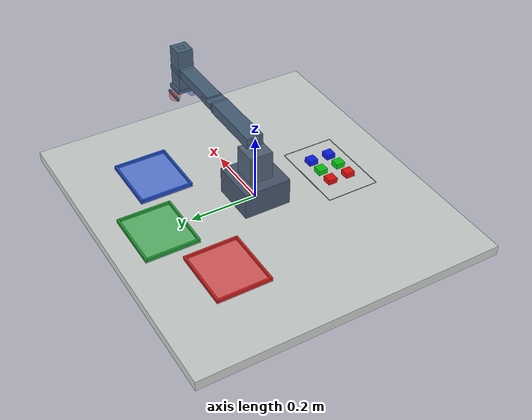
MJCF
<?xml version='1.0' encoding='utf-8'?>
<mujoco model="scara_color_sorter_m2">
  <compiler angle="radian" autolimits="true" fusestatic="false" inertiafromgeom="false" balanceinertia="false" />
  <option timestep="0.002" gravity="0 0 -9.8066499999999994" integrator="implicitfast" solver="Newton" iterations="100" tolerance="1e-08" impratio="1" noslip_iterations="1" cone="elliptic" />
  <size njmax="3000" nconmax="800" />
  <visual>
    <global azimuth="135" elevation="-25" offwidth="1280" offheight="960" />
  </visual>
  <default>
    <joint limited="true" armature="0.001" />
    <geom contype="1" conaffinity="1" condim="6" solref="0.02 1" solimp="0.94999999999999996 0.98999999999999999 0.001" />
  </default>
  <worldbody>
    <light name="key_light" pos="0 0 1.3500000000000001" dir="0 0 -1" directional="true" diffuse="0.81999999999999995 0.81999999999999995 0.81999999999999995" ambient="0.35999999999999999 0.35999999999999999 0.35999999999999999" specular="0.10000000000000001 0.10000000000000001 0.10000000000000001" />
    <camera name="overhead_rgb" pos="0 0 1.05" quat="1 0 0 0" fovy="50" mode="fixed" />
    <body name="table" pos="0 0 0">
      <geom name="table_top_visual" type="box" size="0.5 0.45000000000000001 0.014999999999999999" pos="0 0 -0.014999999999999999" rgba="0.80000000000000004 0.81999999999999995 0.81000000000000005 1" contype="0" conaffinity="0" group="1" mass="0" />
      <geom name="table_top_collision" type="box" size="0.5 0.45000000000000001 0.014999999999999999" pos="0 0 -0.014999999999999999" rgba="0 0 0 0" contype="1" conaffinity="1" group="3" mass="0" friction="0.5 0.0050000000000000001 0.001" condim="6" solref="0.02 1" solimp="0.94999999999999996 0.98999999999999999 0.001" />
    </body>
    <body name="base_static" pos="0 0 0">
      <geom name="base_foot_visual" type="box" size="0.070000000000000007 0.070000000000000007 0.040000000000000001" pos="0 0 0.040000000000000001" rgba="0.28000000000000003 0.34000000000000002 0.41999999999999998 1" contype="0" conaffinity="0" group="1" mass="0" />
      <geom name="base_foot_collision" type="box" size="0.070000000000000007 0.070000000000000007 0.040000000000000001" pos="0 0 0.040000000000000001" rgba="0 0 0 0" contype="1" conaffinity="1" group="3" mass="0" friction="0.5 0.0050000000000000001 0.001" condim="6" solref="0.02 1" solimp="0.94999999999999996 0.98999999999999999 0.001" />
      <geom name="base_column_visual" type="box" size="0.035000000000000003 0.035000000000000003 0.042500000000000003" pos="0 0 0.1225" rgba="0.32000000000000001 0.39000000000000001 0.46999999999999997 1" contype="0" conaffinity="0" group="1" mass="0" />
      <geom name="base_column_collision" type="box" size="0.035000000000000003 0.035000000000000003 0.042500000000000003" pos="0 0 0.1225" rgba="0 0 0 0" contype="1" conaffinity="1" group="3" mass="0" friction="0.5 0.0050000000000000001 0.001" condim="6" solref="0.02 1" solimp="0.94999999999999996 0.98999999999999999 0.001" />
      <geom name="base_axle_visual" type="cylinder" size="0.01 0.02" pos="0 0 0.185" rgba="0.38 0.44 0.52000000000000002 1" contype="0" conaffinity="0" group="1" mass="0" />
      <geom name="base_axle_collision" type="cylinder" size="0.01 0.02" pos="0 0 0.185" rgba="0 0 0 0" contype="1" conaffinity="1" group="3" mass="0" friction="0.5 0.0050000000000000001 0.001" condim="6" solref="0.02 1" solimp="0.94999999999999996 0.98999999999999999 0.001" />
    </body>
    <body name="input_zone_visual" pos="0 0 0">
      <geom name="input_mark_xmin_visual" type="box" size="0.001 0.080000000000000002 0.00050000000000000001" pos="-0.12 -0.25 0.00050000000000000001" rgba="0.45000000000000001 0.47999999999999998 0.52000000000000002 1" contype="0" conaffinity="0" group="1" mass="0" />
      <geom name="input_mark_xmax_visual" type="box" size="0.001 0.080000000000000002 0.00050000000000000001" pos="0.12 -0.25 0.00050000000000000001" rgba="0.45000000000000001 0.47999999999999998 0.52000000000000002 1" contype="0" conaffinity="0" group="1" mass="0" />
      <geom name="input_mark_ymin_visual" type="box" size="0.12 0.001 0.00050000000000000001" pos="0 -0.33000000000000002 0.00050000000000000001" rgba="0.45000000000000001 0.47999999999999998 0.52000000000000002 1" contype="0" conaffinity="0" group="1" mass="0" />
      <geom name="input_mark_ymax_visual" type="box" size="0.12 0.001 0.00050000000000000001" pos="0 -0.16999999999999998 0.00050000000000000001" rgba="0.45000000000000001 0.47999999999999998 0.52000000000000002 1" contype="0" conaffinity="0" group="1" mass="0" />
    </body>
    <body name="tray_red" pos="-0.22 0.20999999999999999 0">
      <geom name="tray_red_floor_visual" type="box" size="0.091999999999999998 0.080000000000000002 0.002" pos="0 0 0.002" rgba="0.87039999999999995 0.3664 0.3664 1" contype="0" conaffinity="0" group="1" mass="0" />
      <geom name="tray_red_floor_collision" type="box" size="0.091999999999999998 0.080000000000000002 0.002" pos="0 0 0.002" rgba="0 0 0 0" contype="1" conaffinity="1" group="3" mass="0" friction="0.5 0.0050000000000000001 0.001" condim="6" solref="0.02 1" solimp="0.94999999999999996 0.98999999999999999 0.001" />
      <geom name="tray_red_left_wall_visual" type="box" size="0.0030000000000000001 0.073999999999999996 0.0040000000000000001" pos="-0.088999999999999996 0 0.0080000000000000002" rgba="0.81999999999999995 0.12 0.12 1" contype="0" conaffinity="0" group="1" mass="0" />
      <geom name="tray_red_left_wall_collision" type="box" size="0.0030000000000000001 0.073999999999999996 0.0040000000000000001" pos="-0.088999999999999996 0 0.0080000000000000002" rgba="0 0 0 0" contype="1" conaffinity="1" group="3" mass="0" friction="0.5 0.0050000000000000001 0.001" condim="6" solref="0.02 1" solimp="0.94999999999999996 0.98999999999999999 0.001" />
      <geom name="tray_red_right_wall_visual" type="box" size="0.0030000000000000001 0.073999999999999996 0.0040000000000000001" pos="0.088999999999999996 0 0.0080000000000000002" rgba="0.81999999999999995 0.12 0.12 1" contype="0" conaffinity="0" group="1" mass="0" />
      <geom name="tray_red_right_wall_collision" type="box" size="0.0030000000000000001 0.073999999999999996 0.0040000000000000001" pos="0.088999999999999996 0 0.0080000000000000002" rgba="0 0 0 0" contype="1" conaffinity="1" group="3" mass="0" friction="0.5 0.0050000000000000001 0.001" condim="6" solref="0.02 1" solimp="0.94999999999999996 0.98999999999999999 0.001" />
      <geom name="tray_red_front_wall_visual" type="box" size="0.091999999999999998 0.0030000000000000001 0.0040000000000000001" pos="0 -0.076999999999999999 0.0080000000000000002" rgba="0.81999999999999995 0.12 0.12 1" contype="0" conaffinity="0" group="1" mass="0" />
      <geom name="tray_red_front_wall_collision" type="box" size="0.091999999999999998 0.0030000000000000001 0.0040000000000000001" pos="0 -0.076999999999999999 0.0080000000000000002" rgba="0 0 0 0" contype="1" conaffinity="1" group="3" mass="0" friction="0.5 0.0050000000000000001 0.001" condim="6" solref="0.02 1" solimp="0.94999999999999996 0.98999999999999999 0.001" />
      <geom name="tray_red_back_wall_visual" type="box" size="0.091999999999999998 0.0030000000000000001 0.0040000000000000001" pos="0 0.076999999999999999 0.0080000000000000002" rgba="0.81999999999999995 0.12 0.12 1" contype="0" conaffinity="0" group="1" mass="0" />
      <geom name="tray_red_back_wall_collision" type="box" size="0.091999999999999998 0.0030000000000000001 0.0040000000000000001" pos="0 0.076999999999999999 0.0080000000000000002" rgba="0 0 0 0" contype="1" conaffinity="1" group="3" mass="0" friction="0.5 0.0050000000000000001 0.001" condim="6" solref="0.02 1" solimp="0.94999999999999996 0.98999999999999999 0.001" />
    </body>
    <body name="tray_green" pos="0 0.29999999999999999 0">
      <geom name="tray_green_floor_visual" type="box" size="0.091999999999999998 0.080000000000000002 0.002" pos="0 0 0.002" rgba="0.3664 0.72639999999999993 0.42400000000000004 1" contype="0" conaffinity="0" group="1" mass="0" />
      <geom name="tray_green_floor_collision" type="box" size="0.091999999999999998 0.080000000000000002 0.002" pos="0 0 0.002" rgba="0 0 0 0" contype="1" conaffinity="1" group="3" mass="0" friction="0.5 0.0050000000000000001 0.001" condim="6" solref="0.02 1" solimp="0.94999999999999996 0.98999999999999999 0.001" />
      <geom name="tray_green_left_wall_visual" type="box" size="0.0030000000000000001 0.073999999999999996 0.0040000000000000001" pos="-0.088999999999999996 0 0.0080000000000000002" rgba="0.12 0.62 0.20000000000000001 1" contype="0" conaffinity="0" group="1" mass="0" />
      <geom name="tray_green_left_wall_collision" type="box" size="0.0030000000000000001 0.073999999999999996 0.0040000000000000001" pos="-0.088999999999999996 0 0.0080000000000000002" rgba="0 0 0 0" contype="1" conaffinity="1" group="3" mass="0" friction="0.5 0.0050000000000000001 0.001" condim="6" solref="0.02 1" solimp="0.94999999999999996 0.98999999999999999 0.001" />
      <geom name="tray_green_right_wall_visual" type="box" size="0.0030000000000000001 0.073999999999999996 0.0040000000000000001" pos="0.088999999999999996 0 0.0080000000000000002" rgba="0.12 0.62 0.20000000000000001 1" contype="0" conaffinity="0" group="1" mass="0" />
      <geom name="tray_green_right_wall_collision" type="box" size="0.0030000000000000001 0.073999999999999996 0.0040000000000000001" pos="0.088999999999999996 0 0.0080000000000000002" rgba="0 0 0 0" contype="1" conaffinity="1" group="3" mass="0" friction="0.5 0.0050000000000000001 0.001" condim="6" solref="0.02 1" solimp="0.94999999999999996 0.98999999999999999 0.001" />
      <geom name="tray_green_front_wall_visual" type="box" size="0.091999999999999998 0.0030000000000000001 0.0040000000000000001" pos="0 -0.076999999999999999 0.0080000000000000002" rgba="0.12 0.62 0.20000000000000001 1" contype="0" conaffinity="0" group="1" mass="0" />
      <geom name="tray_green_front_wall_collision" type="box" size="0.091999999999999998 0.0030000000000000001 0.0040000000000000001" pos="0 -0.076999999999999999 0.0080000000000000002" rgba="0 0 0 0" contype="1" conaffinity="1" group="3" mass="0" friction="0.5 0.0050000000000000001 0.001" condim="6" solref="0.02 1" solimp="0.94999999999999996 0.98999999999999999 0.001" />
      <geom name="tray_green_back_wall_visual" type="box" size="0.091999999999999998 0.0030000000000000001 0.0040000000000000001" pos="0 0.076999999999999999 0.0080000000000000002" rgba="0.12 0.62 0.20000000000000001 1" contype="0" conaffinity="0" group="1" mass="0" />
      <geom name="tray_green_back_wall_collision" type="box" size="0.091999999999999998 0.0030000000000000001 0.0040000000000000001" pos="0 0.076999999999999999 0.0080000000000000002" rgba="0 0 0 0" contype="1" conaffinity="1" group="3" mass="0" friction="0.5 0.0050000000000000001 0.001" condim="6" solref="0.02 1" solimp="0.94999999999999996 0.98999999999999999 0.001" />
    </body>
    <body name="tray_blue" pos="0.22 0.20999999999999999 0">
      <geom name="tray_blue_floor_visual" type="box" size="0.091999999999999998 0.080000000000000002 0.002" pos="0 0 0.002" rgba="0.3664 0.496 0.85599999999999998 1" contype="0" conaffinity="0" group="1" mass="0" />
      <geom name="tray_blue_floor_collision" type="box" size="0.091999999999999998 0.080000000000000002 0.002" pos="0 0 0.002" rgba="0 0 0 0" contype="1" conaffinity="1" group="3" mass="0" friction="0.5 0.0050000000000000001 0.001" condim="6" solref="0.02 1" solimp="0.94999999999999996 0.98999999999999999 0.001" />
      <geom name="tray_blue_left_wall_visual" type="box" size="0.0030000000000000001 0.073999999999999996 0.0040000000000000001" pos="-0.088999999999999996 0 0.0080000000000000002" rgba="0.12 0.29999999999999999 0.80000000000000004 1" contype="0" conaffinity="0" group="1" mass="0" />
      <geom name="tray_blue_left_wall_collision" type="box" size="0.0030000000000000001 0.073999999999999996 0.0040000000000000001" pos="-0.088999999999999996 0 0.0080000000000000002" rgba="0 0 0 0" contype="1" conaffinity="1" group="3" mass="0" friction="0.5 0.0050000000000000001 0.001" condim="6" solref="0.02 1" solimp="0.94999999999999996 0.98999999999999999 0.001" />
      <geom name="tray_blue_right_wall_visual" type="box" size="0.0030000000000000001 0.073999999999999996 0.0040000000000000001" pos="0.088999999999999996 0 0.0080000000000000002" rgba="0.12 0.29999999999999999 0.80000000000000004 1" contype="0" conaffinity="0" group="1" mass="0" />
      <geom name="tray_blue_right_wall_collision" type="box" size="0.0030000000000000001 0.073999999999999996 0.0040000000000000001" pos="0.088999999999999996 0 0.0080000000000000002" rgba="0 0 0 0" contype="1" conaffinity="1" group="3" mass="0" friction="0.5 0.0050000000000000001 0.001" condim="6" solref="0.02 1" solimp="0.94999999999999996 0.98999999999999999 0.001" />
      <geom name="tray_blue_front_wall_visual" type="box" size="0.091999999999999998 0.0030000000000000001 0.0040000000000000001" pos="0 -0.076999999999999999 0.0080000000000000002" rgba="0.12 0.29999999999999999 0.80000000000000004 1" contype="0" conaffinity="0" group="1" mass="0" />
      <geom name="tray_blue_front_wall_collision" type="box" size="0.091999999999999998 0.0030000000000000001 0.0040000000000000001" pos="0 -0.076999999999999999 0.0080000000000000002" rgba="0 0 0 0" contype="1" conaffinity="1" group="3" mass="0" friction="0.5 0.0050000000000000001 0.001" condim="6" solref="0.02 1" solimp="0.94999999999999996 0.98999999999999999 0.001" />
      <geom name="tray_blue_back_wall_visual" type="box" size="0.091999999999999998 0.0030000000000000001 0.0040000000000000001" pos="0 0.076999999999999999 0.0080000000000000002" rgba="0.12 0.29999999999999999 0.80000000000000004 1" contype="0" conaffinity="0" group="1" mass="0" />
      <geom name="tray_blue_back_wall_collision" type="box" size="0.091999999999999998 0.0030000000000000001 0.0040000000000000001" pos="0 0.076999999999999999 0.0080000000000000002" rgba="0 0 0 0" contype="1" conaffinity="1" group="3" mass="0" friction="0.5 0.0050000000000000001 0.001" condim="6" solref="0.02 1" solimp="0.94999999999999996 0.98999999999999999 0.001" />
    </body>
    <body name="link1" pos="0 0 0.19">
      <joint name="j1_shoulder" type="hinge" axis="0 0 1" range="-3.1415926535897931 3.1415926535897931" damping="0.050000000000000003" />
      <inertial pos="0.16294034631485471 0 0" mass="0.15639872000000005" fullinertia="6.0583539733333357e-05 0.00090713404845876823 0.00093616126797876832 0 0 0" />
      <geom name="link1_link1_tube_visual" type="box" size="0.097500000000000003 0.025000000000000001 0.016" pos="0.097500000000000003 0 0" rgba="0.28000000000000003 0.38 0.47999999999999998 1" contype="0" conaffinity="0" group="1" mass="0" />
      <geom name="link1_link1_tube_collision" type="box" size="0.097500000000000003 0.025000000000000001 0.016" pos="0.097500000000000003 0 0" rgba="0 0 0 0" contype="1" conaffinity="1" group="3" mass="0" friction="0.59999999999999998 0.0050000000000000001 0.001" condim="6" solref="0.02 1" solimp="0.94999999999999996 0.98999999999999999 0.001" />
      <geom name="link1_link1_connector_visual" type="box" size="0.0040000000000000001 0.025000000000000001 0.016" pos="0.19900000000000001 0 0" rgba="0.28000000000000003 0.38 0.47999999999999998 1" contype="0" conaffinity="0" group="1" mass="0" />
      <geom name="link1_link1_connector_collision" type="box" size="0.0040000000000000001 0.025000000000000001 0.016" pos="0.19900000000000001 0 0" rgba="0 0 0 0" contype="1" conaffinity="1" group="3" mass="0" friction="0.59999999999999998 0.0050000000000000001 0.001" condim="6" solref="0.02 1" solimp="0.94999999999999996 0.98999999999999999 0.001" />
      <geom name="link1_elbow_plate_visual" type="box" size="0.027 0.027 0.0089999999999999993" pos="0.23000000000000001 0 0" rgba="0.28000000000000003 0.38 0.47999999999999998 1" contype="0" conaffinity="0" group="1" mass="0" />
      <geom name="link1_elbow_plate_collision" type="box" size="0.027 0.027 0.0089999999999999993" pos="0.23000000000000001 0 0" rgba="0 0 0 0" contype="1" conaffinity="1" group="3" mass="0" friction="0.59999999999999998 0.0050000000000000001 0.001" condim="6" solref="0.02 1" solimp="0.94999999999999996 0.98999999999999999 0.001" />
      <body name="link2" pos="0.23000000000000001 0 0">
        <joint name="j2_elbow" type="hinge" axis="0 0 1" range="-2.6179938779914944 2.6179938779914944" damping="0.040000000000000001" />
        <inertial pos="0.14852863202545072 0 0" mass="0.14031840000000007" fullinertia="0.00016186201120000002 0.00070804731256797482 0.00063315314776797474 0 0 0" />
        <geom name="link2_link2_tube_visual" type="box" size="0.082500000000000004 0.021999999999999999 0.014999999999999999" pos="0.082500000000000004 0 0" rgba="0.28000000000000003 0.38 0.47999999999999998 1" contype="0" conaffinity="0" group="1" mass="0" />
        <geom name="link2_link2_tube_collision" type="box" size="0.082500000000000004 0.021999999999999999 0.014999999999999999" pos="0.082500000000000004 0 0" rgba="0 0 0 0" contype="1" conaffinity="1" group="3" mass="0" friction="0.59999999999999998 0.0050000000000000001 0.001" condim="6" solref="0.02 1" solimp="0.94999999999999996 0.98999999999999999 0.001" />
        <geom name="link2_link2_connector_visual" type="box" size="0.0050000000000000001 0.021999999999999999 0.014999999999999999" pos="0.17000000000000001 0 0" rgba="0.28000000000000003 0.38 0.47999999999999998 1" contype="0" conaffinity="0" group="1" mass="0" />
        <geom name="link2_link2_connector_collision" type="box" size="0.0050000000000000001 0.021999999999999999 0.014999999999999999" pos="0.17000000000000001 0 0" rgba="0 0 0 0" contype="1" conaffinity="1" group="3" mass="0" friction="0.59999999999999998 0.0050000000000000001 0.001" condim="6" solref="0.02 1" solimp="0.94999999999999996 0.98999999999999999 0.001" />
        <geom name="link2_z_guide_visual" type="box" size="0.025000000000000001 0.025000000000000001 0.070000000000000007" pos="0.20000000000000001 0 0" rgba="0.28000000000000003 0.38 0.47999999999999998 1" contype="0" conaffinity="0" group="1" mass="0" />
        <geom name="link2_z_guide_collision" type="box" size="0.025000000000000001 0.025000000000000001 0.070000000000000007" pos="0.20000000000000001 0 0" rgba="0 0 0 0" contype="1" conaffinity="1" group="3" mass="0" friction="0.59999999999999998 0.0050000000000000001 0.001" condim="6" solref="0.02 1" solimp="0.94999999999999996 0.98999999999999999 0.001" />
        <body name="z_slide" pos="0.20000000000000001 0 0">
          <joint name="j3_lift" type="slide" axis="0 0 -1" range="0 0.097000000000000003" damping="1" />
          <inertial pos="0 0 0.00029386892177589858" mass="0.037537279999999992" fullinertia="4.1413737093502464e-05 4.1413737093502464e-05 1.110320469333333e-05 0 0 0" />
          <geom name="z_slide_z_carriage_visual" type="box" size="0.025999999999999999 0.025999999999999999 0.0060000000000000001" pos="0 0 0" rgba="0.28000000000000003 0.38 0.47999999999999998 1" contype="0" conaffinity="0" group="1" mass="0" />
          <geom name="z_slide_z_carriage_collision" type="box" size="0.025999999999999999 0.025999999999999999 0.0060000000000000001" pos="0 0 0" rgba="0 0 0 0" contype="1" conaffinity="1" group="3" mass="0" friction="0.59999999999999998 0.0050000000000000001 0.001" condim="6" solref="0.02 1" solimp="0.94999999999999996 0.98999999999999999 0.001" />
          <geom name="z_slide_z_upper_rod_visual" type="box" size="0.0089999999999999993 0.0089999999999999993 0.032000000000000001" pos="0 0 0.037999999999999999" rgba="0.28000000000000003 0.38 0.47999999999999998 1" contype="0" conaffinity="0" group="1" mass="0" />
          <geom name="z_slide_z_upper_rod_collision" type="box" size="0.0089999999999999993 0.0089999999999999993 0.032000000000000001" pos="0 0 0.037999999999999999" rgba="0 0 0 0" contype="1" conaffinity="1" group="3" mass="0" friction="0.59999999999999998 0.0050000000000000001 0.001" condim="6" solref="0.02 1" solimp="0.94999999999999996 0.98999999999999999 0.001" />
          <geom name="z_slide_z_lower_rod_visual" type="box" size="0.0089999999999999993 0.0089999999999999993 0.0315" pos="0 0 -0.037499999999999999" rgba="0.28000000000000003 0.38 0.47999999999999998 1" contype="0" conaffinity="0" group="1" mass="0" />
          <geom name="z_slide_z_lower_rod_collision" type="box" size="0.0089999999999999993 0.0089999999999999993 0.0315" pos="0 0 -0.037499999999999999" rgba="0 0 0 0" contype="1" conaffinity="1" group="3" mass="0" friction="0.59999999999999998 0.0050000000000000001 0.001" condim="6" solref="0.02 1" solimp="0.94999999999999996 0.98999999999999999 0.001" />
          <body name="wrist" pos="0 0 -0.074999999999999997">
            <joint name="j4_wrist" type="hinge" axis="0 0 1" range="-3.1415926535897931 3.1415926535897931" damping="0.01" />
            <inertial pos="0 0 0.01" mass="0.044290778963741395" fullinertia="1.2092736962177605e-05 9.763917762177603e-06 2.039687602922541e-05 0 0 0" />
            <geom name="wrist_wrist_hub_visual" type="cylinder" size="0.021999999999999999 0.0060000000000000001" pos="0 0 0.01" rgba="0.28000000000000003 0.38 0.47999999999999998 1" contype="0" conaffinity="0" group="1" mass="0" />
            <geom name="wrist_wrist_hub_collision" type="cylinder" size="0.021999999999999999 0.0060000000000000001" pos="0 0 0.01" rgba="0 0 0 0" contype="1" conaffinity="1" group="3" mass="0" friction="0.59999999999999998 0.0050000000000000001 0.001" condim="6" solref="0.02 1" solimp="0.94999999999999996 0.98999999999999999 0.001" />
            <geom name="wrist_palm_visual" type="box" size="0.027 0.032000000000000001 0.0060000000000000001" pos="0 0 0.01" rgba="0.28000000000000003 0.38 0.47999999999999998 1" contype="0" conaffinity="0" group="1" mass="0" />
            <geom name="wrist_palm_collision" type="box" size="0.027 0.032000000000000001 0.0060000000000000001" pos="0 0 0.01" rgba="0 0 0 0" contype="1" conaffinity="1" group="3" mass="0" friction="0.59999999999999998 0.0050000000000000001 0.001" condim="6" solref="0.02 1" solimp="0.94999999999999996 0.98999999999999999 0.001" />
            <site name="tcp" pos="0 0 -0.012" type="sphere" size="0.0030000000000000001" rgba="1 1 0 1" group="2" />
            <body name="finger_left" pos="0 0.033000000000000002 -0.012">
              <joint name="j5_finger_left" type="slide" axis="0 -1 0" range="0 0.027" damping="0.5" />
              <inertial pos="0 0 0" mass="0.0044640000000000001" fullinertia="5.0592000000000001e-08 1.3763999999999999e-06 1.352592e-06 0 0 0" />
              <geom name="finger_left_visual" type="box" size="0.029999999999999999 0.0030000000000000001 0.0050000000000000001" pos="0 0 0" rgba="0.28000000000000003 0.38 0.47999999999999998 1" contype="0" conaffinity="0" group="1" mass="0" />
              <geom name="finger_left_collision" type="box" size="0.029999999999999999 0.0030000000000000001 0.0050000000000000001" pos="0 0 0" rgba="0 0 0 0" contype="1" conaffinity="1" group="3" mass="0" friction="0.59999999999999998 0.0050000000000000001 0.001" condim="6" solref="0.02 1" solimp="0.94999999999999996 0.98999999999999999 0.001" />
              <site name="touch_left_site" type="sphere" pos="0 -0.0030000000000000001 0" size="0.017999999999999999" rgba="1 0.20000000000000001 0.20000000000000001 0.34999999999999998" group="2" />
            </body>
            <body name="finger_right" pos="0 -0.033000000000000002 -0.012">
              <joint name="j6_finger_right" type="slide" axis="0 1 0" range="0 0.027" damping="0.5" />
              <inertial pos="0 0 0" mass="0.0044640000000000001" fullinertia="5.0592000000000001e-08 1.3763999999999999e-06 1.352592e-06 0 0 0" />
              <geom name="finger_right_visual" type="box" size="0.029999999999999999 0.0030000000000000001 0.0050000000000000001" pos="0 0 0" rgba="0.28000000000000003 0.38 0.47999999999999998 1" contype="0" conaffinity="0" group="1" mass="0" />
              <geom name="finger_right_collision" type="box" size="0.029999999999999999 0.0030000000000000001 0.0050000000000000001" pos="0 0 0" rgba="0 0 0 0" contype="1" conaffinity="1" group="3" mass="0" friction="0.59999999999999998 0.0050000000000000001 0.001" condim="6" solref="0.02 1" solimp="0.94999999999999996 0.98999999999999999 0.001" />
              <site name="touch_right_site" type="sphere" pos="0 0.0030000000000000001 0" size="0.017999999999999999" rgba="0.20000000000000001 0.20000000000000001 1 0.34999999999999998" group="2" />
            </body>
          </body>
        </body>
      </body>
    </body>
    <body name="object_red_01" pos="-0.050000000000000003 -0.28000000000000003 0.0080000000000000002" quat="1 0 0 0">
      <freejoint name="object_red_01_free" />
      <inertial pos="0 0 0" mass="0.015554560000000002" fullinertia="1.348061866666667e-06 1.348061866666667e-06 2.0324625066666672e-06 0 0 0" />
      <geom name="object_red_01_visual" type="box" size="0.014 0.014 0.0080000000000000002" pos="0 0 0" rgba="0.90000000000000002 0.059999999999999998 0.040000000000000001 1" contype="0" conaffinity="0" group="1" mass="0" />
      <geom name="object_red_01_collision" type="box" size="0.014 0.014 0.0080000000000000002" pos="0 0 0" rgba="0 0 0 0" contype="1" conaffinity="1" group="3" mass="0" friction="0.5 0.0050000000000000001 0.001" condim="6" solref="0.02 1" solimp="0.94999999999999996 0.98999999999999999 0.001" />
    </body>
    <body name="object_green_01" pos="0 -0.28000000000000003 0.0080000000000000002" quat="1 0 0 0">
      <freejoint name="object_green_01_free" />
      <inertial pos="0 0 0" mass="0.015554560000000002" fullinertia="1.348061866666667e-06 1.348061866666667e-06 2.0324625066666672e-06 0 0 0" />
      <geom name="object_green_01_visual" type="box" size="0.014 0.014 0.0080000000000000002" pos="0 0 0" rgba="0.040000000000000001 0.78000000000000003 0.080000000000000002 1" contype="0" conaffinity="0" group="1" mass="0" />
      <geom name="object_green_01_collision" type="box" size="0.014 0.014 0.0080000000000000002" pos="0 0 0" rgba="0 0 0 0" contype="1" conaffinity="1" group="3" mass="0" friction="0.5 0.0050000000000000001 0.001" condim="6" solref="0.02 1" solimp="0.94999999999999996 0.98999999999999999 0.001" />
    </body>
    <body name="object_blue_01" pos="0.050000000000000003 -0.28000000000000003 0.0080000000000000002" quat="1 0 0 0">
      <freejoint name="object_blue_01_free" />
      <inertial pos="0 0 0" mass="0.015554560000000002" fullinertia="1.348061866666667e-06 1.348061866666667e-06 2.0324625066666672e-06 0 0 0" />
      <geom name="object_blue_01_visual" type="box" size="0.014 0.014 0.0080000000000000002" pos="0 0 0" rgba="0.040000000000000001 0.12 0.92000000000000004 1" contype="0" conaffinity="0" group="1" mass="0" />
      <geom name="object_blue_01_collision" type="box" size="0.014 0.014 0.0080000000000000002" pos="0 0 0" rgba="0 0 0 0" contype="1" conaffinity="1" group="3" mass="0" friction="0.5 0.0050000000000000001 0.001" condim="6" solref="0.02 1" solimp="0.94999999999999996 0.98999999999999999 0.001" />
    </body>
    <body name="object_red_02" pos="-0.050000000000000003 -0.22 0.0080000000000000002" quat="1 0 0 0">
      <freejoint name="object_red_02_free" />
      <inertial pos="0 0 0" mass="0.015554560000000002" fullinertia="1.348061866666667e-06 1.348061866666667e-06 2.0324625066666672e-06 0 0 0" />
      <geom name="object_red_02_visual" type="box" size="0.014 0.014 0.0080000000000000002" pos="0 0 0" rgba="0.90000000000000002 0.059999999999999998 0.040000000000000001 1" contype="0" conaffinity="0" group="1" mass="0" />
      <geom name="object_red_02_collision" type="box" size="0.014 0.014 0.0080000000000000002" pos="0 0 0" rgba="0 0 0 0" contype="1" conaffinity="1" group="3" mass="0" friction="0.5 0.0050000000000000001 0.001" condim="6" solref="0.02 1" solimp="0.94999999999999996 0.98999999999999999 0.001" />
    </body>
    <body name="object_green_02" pos="0 -0.22 0.0080000000000000002" quat="1 0 0 0">
      <freejoint name="object_green_02_free" />
      <inertial pos="0 0 0" mass="0.015554560000000002" fullinertia="1.348061866666667e-06 1.348061866666667e-06 2.0324625066666672e-06 0 0 0" />
      <geom name="object_green_02_visual" type="box" size="0.014 0.014 0.0080000000000000002" pos="0 0 0" rgba="0.040000000000000001 0.78000000000000003 0.080000000000000002 1" contype="0" conaffinity="0" group="1" mass="0" />
      <geom name="object_green_02_collision" type="box" size="0.014 0.014 0.0080000000000000002" pos="0 0 0" rgba="0 0 0 0" contype="1" conaffinity="1" group="3" mass="0" friction="0.5 0.0050000000000000001 0.001" condim="6" solref="0.02 1" solimp="0.94999999999999996 0.98999999999999999 0.001" />
    </body>
    <body name="object_blue_02" pos="0.050000000000000003 -0.22 0.0080000000000000002" quat="1 0 0 0">
      <freejoint name="object_blue_02_free" />
      <inertial pos="0 0 0" mass="0.015554560000000002" fullinertia="1.348061866666667e-06 1.348061866666667e-06 2.0324625066666672e-06 0 0 0" />
      <geom name="object_blue_02_visual" type="box" size="0.014 0.014 0.0080000000000000002" pos="0 0 0" rgba="0.040000000000000001 0.12 0.92000000000000004 1" contype="0" conaffinity="0" group="1" mass="0" />
      <geom name="object_blue_02_collision" type="box" size="0.014 0.014 0.0080000000000000002" pos="0 0 0" rgba="0 0 0 0" contype="1" conaffinity="1" group="3" mass="0" friction="0.5 0.0050000000000000001 0.001" condim="6" solref="0.02 1" solimp="0.94999999999999996 0.98999999999999999 0.001" />
    </body>
      <camera name="placement_rgb" pos="-0.55000000000000004 0.14999999999999999 0.90000000000000002" quat="0.59581288571942181 0.17318856268879398 -0.21889612478442719 -0.75305857243566743" fovy="50" mode="fixed" />
  </worldbody>
  <contact>
    <exclude body1="base_static" body2="link1" />
    <exclude body1="link1" body2="link2" />
    <exclude body1="link2" body2="z_slide" />
    <exclude body1="z_slide" body2="wrist" />
    <exclude body1="wrist" body2="finger_left" />
    <exclude body1="wrist" body2="finger_right" />
  </contact>
  <equality>
    <joint name="finger_mimic" joint1="j6_finger_right" joint2="j5_finger_left" polycoef="0 1 0 0 0" />
  </equality>
  <actuator>
    <position name="act_j1_shoulder" joint="j1_shoulder" kp="20" kv="1" ctrllimited="true" ctrlrange="-3.1415926535897931 3.1415926535897931" forcelimited="true" forcerange="-0.5 0.5" />
    <position name="act_j2_elbow" joint="j2_elbow" kp="15" kv="0.80000000000000004" ctrllimited="true" ctrlrange="-2.6179938779914944 2.6179938779914944" forcelimited="true" forcerange="-0.29999999999999999 0.29999999999999999" />
    <position name="act_j3_lift" joint="j3_lift" kp="3000" kv="20" ctrllimited="true" ctrlrange="0 0.097000000000000003" forcelimited="true" forcerange="-4 4" />
    <position name="act_j4_wrist" joint="j4_wrist" kp="2" kv="0.10000000000000001" ctrllimited="true" ctrlrange="-3.1415926535897931 3.1415926535897931" forcelimited="true" forcerange="-0.080000000000000002 0.080000000000000002" />
    <position name="act_gripper_left" joint="j5_finger_left" kp="85" kv="1.2" ctrllimited="true" ctrlrange="0 0.027" forcelimited="true" forcerange="-1.2 1.2" />
  </actuator>
  <sensor>
    <touch name="touch_left" site="touch_left_site" />
    <touch name="touch_right" site="touch_right_site" />
  </sensor>
  <keyframe>
    <key name="home_observation" qpos="2.6179938779914944 1.0471975511965976 0.014999999999999999 0 0 0 -0.050000000000000003 -0.28000000000000003 0.0080000000000000002 1 0 0 0 0 -0.28000000000000003 0.0080000000000000002 1 0 0 0 0.050000000000000003 -0.28000000000000003 0.0080000000000000002 1 0 0 0 -0.050000000000000003 -0.22 0.0080000000000000002 1 0 0 0 0 -0.22 0.0080000000000000002 1 0 0 0 0.050000000000000003 -0.22 0.0080000000000000002 1 0 0 0" ctrl="2.6179938779914944 1.0471975511965976 0.014999999999999999 0 0" />
  </keyframe>
</mujoco>
